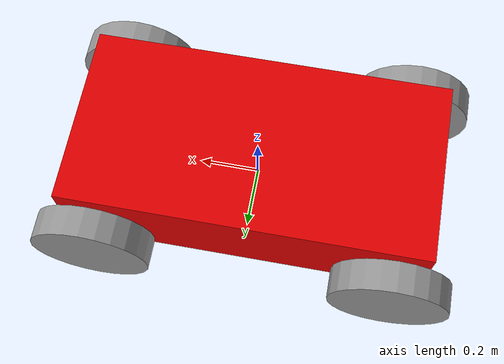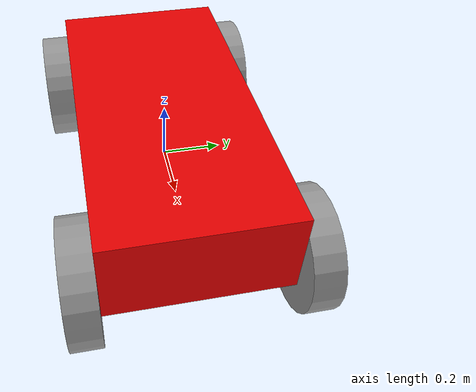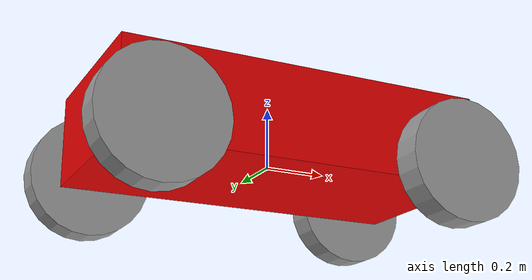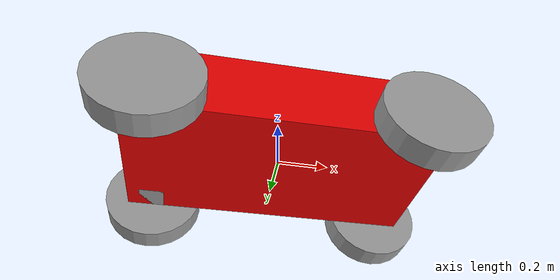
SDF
<?xml version='1.0'?>
<sdf version='1.6'>
  <model name='car'>
    <link name='link_0'>
      <pose frame=''>0 -2e-06 0.088889 0 -0 0</pose>
      <inertial>
        <mass>1</mass>
        <inertia>
          <ixx>0.166667</ixx>
          <ixy>0</ixy>
          <ixz>0</ixz>
          <iyy>0.166667</iyy>
          <iyz>0</iyz>
          <izz>0.166667</izz>
        </inertia>
        <pose frame=''>0 0 0 0 -0 0</pose>
      </inertial>
      <gravity>1</gravity>
      <self_collide>0</self_collide>
      <kinematic>0</kinematic>
      <visual name='visual'>
        <pose frame=''>0 0 0 0 -0 0</pose>
        <geometry>
          <box>
            <size>1.2 0.6 0.3</size>
          </box>
        </geometry>
        <material>
          <lighting>1</lighting>
          <script>
            <uri>file://media/materials/scripts/gazebo.material</uri>
            <name>Gazebo/Grey</name>
          </script>
          <shader type='pixel'>
            <normal_map>__default__</normal_map>
          </shader>
          <ambient>0.9 0.0 0.0 1</ambient>
          <diffuse>0.7 0.7 0.7 1</diffuse>
          <specular>0.01 0.01 0.01 1</specular>
          <emissive>0 0 0 1</emissive>
        </material>
        <transparency>0</transparency>
        <cast_shadows>1</cast_shadows>
      </visual>
      <collision name='collision'>
        <laser_retro>0</laser_retro>
        <max_contacts>10</max_contacts>
        <pose frame=''>0 0 0 0 -0 0</pose>
        <geometry>
          <box>
            <size>1.2 0.6 0.3</size>
          </box>
        </geometry>
        <surface>
          <friction>
            <ode>
              <mu>1</mu>
              <mu2>1</mu2>
              <fdir1>0 0 0</fdir1>
              <slip1>0</slip1>
              <slip2>0</slip2>
            </ode>
            <torsional>
              <coefficient>1</coefficient>
              <patch_radius>0</patch_radius>
              <surface_radius>0</surface_radius>
              <use_patch_radius>1</use_patch_radius>
              <ode>
                <slip>0</slip>
              </ode>
            </torsional>
          </friction>
          <bounce>
            <restitution_coefficient>0</restitution_coefficient>
            <threshold>1e+06</threshold>
          </bounce>
          <contact>
            <collide_without_contact>0</collide_without_contact>
            <collide_without_contact_bitmask>1</collide_without_contact_bitmask>
            <collide_bitmask>1</collide_bitmask>
            <ode>
              <soft_cfm>0</soft_cfm>
              <soft_erp>0.2</soft_erp>
              <kp>1e+13</kp>
              <kd>1</kd>
              <max_vel>0.01</max_vel>
              <min_depth>0</min_depth>
            </ode>
            <bullet>
              <split_impulse>1</split_impulse>
              <split_impulse_penetration_threshold>-0.01</split_impulse_penetration_threshold>
              <soft_cfm>0</soft_cfm>
              <soft_erp>0.2</soft_erp>
              <kp>1e+13</kp>
              <kd>1</kd>
            </bullet>
          </contact>
        </surface>
      </collision>
    </link>
    <link name='link_1'>
      <pose frame=''>-0.5 -0.250002 -0.011111 0 -0 0</pose>
      <inertial>
        <mass>1</mass>
        <inertia>
          <ixx>0.166667</ixx>
          <ixy>0</ixy>
          <ixz>0</ixz>
          <iyy>0.166667</iyy>
          <iyz>0</iyz>
          <izz>0.166667</izz>
        </inertia>
        <pose frame=''>0 0 0 0 -0 0</pose>
      </inertial>
      <gravity>1</gravity>
      <self_collide>0</self_collide>
      <kinematic>0</kinematic>
      <visual name='visual'>
        <pose frame=''>0 0 0 0 -0 0</pose>
        <geometry>
          <box>
            <size>0.1 0.1 0.1</size>
          </box>
        </geometry>
        <material>
          <lighting>1</lighting>
          <script>
            <uri>file://media/materials/scripts/gazebo.material</uri>
            <name>Gazebo/Grey</name>
          </script>
          <shader type='pixel'>
            <normal_map>__default__</normal_map>
          </shader>
          <ambient>0.9 0.9 0.9 1</ambient>
          <diffuse>0.7 0.7 0.7 1</diffuse>
          <specular>0.01 0.01 0.01 1</specular>
          <emissive>0 0 0 1</emissive>
        </material>
        <transparency>0</transparency>
        <cast_shadows>1</cast_shadows>
      </visual>
      <collision name='collision'>
        <laser_retro>0</laser_retro>
        <max_contacts>10</max_contacts>
        <pose frame=''>0 0 0 0 -0 0</pose>
        <geometry>
          <box>
            <size>0.1 0.1 0.1</size>
          </box>
        </geometry>
        <surface>
          <friction>
            <ode>
              <mu>1</mu>
              <mu2>1</mu2>
              <fdir1>0 0 0</fdir1>
              <slip1>0</slip1>
              <slip2>0</slip2>
            </ode>
            <torsional>
              <coefficient>1</coefficient>
              <patch_radius>0</patch_radius>
              <surface_radius>0</surface_radius>
              <use_patch_radius>1</use_patch_radius>
              <ode>
                <slip>0</slip>
              </ode>
            </torsional>
          </friction>
          <bounce>
            <restitution_coefficient>0</restitution_coefficient>
            <threshold>1e+06</threshold>
          </bounce>
          <contact>
            <collide_without_contact>0</collide_without_contact>
            <collide_without_contact_bitmask>1</collide_without_contact_bitmask>
            <collide_bitmask>1</collide_bitmask>
            <ode>
              <soft_cfm>0</soft_cfm>
              <soft_erp>0.2</soft_erp>
              <kp>1e+13</kp>
              <kd>1</kd>
              <max_vel>0.01</max_vel>
              <min_depth>0</min_depth>
            </ode>
            <bullet>
              <split_impulse>1</split_impulse>
              <split_impulse_penetration_threshold>-0.01</split_impulse_penetration_threshold>
              <soft_cfm>0</soft_cfm>
              <soft_erp>0.2</soft_erp>
              <kp>1e+13</kp>
              <kd>1</kd>
            </bullet>
          </contact>
        </surface>
      </collision>
    </link>
    <link name='link_1_clone'>
      <pose frame=''>-0.5 0.249998 -0.011111 0 -0 0</pose>
      <inertial>
        <mass>1</mass>
        <inertia>
          <ixx>0.166667</ixx>
          <ixy>0</ixy>
          <ixz>0</ixz>
          <iyy>0.166667</iyy>
          <iyz>0</iyz>
          <izz>0.166667</izz>
        </inertia>
        <pose frame=''>0 0 0 0 -0 0</pose>
      </inertial>
      <self_collide>0</self_collide>
      <kinematic>0</kinematic>
      <visual name='visual'>
        <pose frame=''>0 0 0 0 -0 0</pose>
        <geometry>
          <box>
            <size>0.1 0.1 0.1</size>
          </box>
        </geometry>
        <material>
          <lighting>1</lighting>
          <script>
            <uri>file://media/materials/scripts/gazebo.material</uri>
            <name>Gazebo/Grey</name>
          </script>
          <shader type='pixel'>
            <normal_map>__default__</normal_map>
          </shader>
          <ambient>0.9 0.9 0.9 1</ambient>
          <diffuse>0.7 0.7 0.7 1</diffuse>
          <specular>0.01 0.01 0.01 1</specular>
          <emissive>0 0 0 1</emissive>
        </material>
        <transparency>0</transparency>
        <cast_shadows>1</cast_shadows>
      </visual>
      <collision name='collision'>
        <laser_retro>0</laser_retro>
        <max_contacts>10</max_contacts>
        <pose frame=''>0 0 0 0 -0 0</pose>
        <geometry>
          <box>
            <size>0.1 0.1 0.1</size>
          </box>
        </geometry>
        <surface>
          <friction>
            <ode>
              <mu>1</mu>
              <mu2>1</mu2>
              <fdir1>0 0 0</fdir1>
              <slip1>0</slip1>
              <slip2>0</slip2>
            </ode>
            <torsional>
              <coefficient>1</coefficient>
              <patch_radius>0</patch_radius>
              <surface_radius>0</surface_radius>
              <use_patch_radius>1</use_patch_radius>
              <ode>
                <slip>0</slip>
              </ode>
            </torsional>
          </friction>
          <bounce>
            <restitution_coefficient>0</restitution_coefficient>
            <threshold>1e+06</threshold>
          </bounce>
          <contact>
            <collide_without_contact>0</collide_without_contact>
            <collide_without_contact_bitmask>1</collide_without_contact_bitmask>
            <collide_bitmask>1</collide_bitmask>
            <ode>
              <soft_cfm>0</soft_cfm>
              <soft_erp>0.2</soft_erp>
              <kp>1e+13</kp>
              <kd>1</kd>
              <max_vel>0.01</max_vel>
              <min_depth>0</min_depth>
            </ode>
            <bullet>
              <split_impulse>1</split_impulse>
              <split_impulse_penetration_threshold>-0.01</split_impulse_penetration_threshold>
              <soft_cfm>0</soft_cfm>
              <soft_erp>0.2</soft_erp>
              <kp>1e+13</kp>
              <kd>1</kd>
            </bullet>
          </contact>
        </surface>
      </collision>
    </link>
    <link name='link_1_clone_0'>
      <pose frame=''>0.5 -0.250002 -0.011111 0 -0 0</pose>
      <inertial>
        <mass>1</mass>
        <inertia>
          <ixx>0.166667</ixx>
          <ixy>0</ixy>
          <ixz>0</ixz>
          <iyy>0.166667</iyy>
          <iyz>0</iyz>
          <izz>0.166667</izz>
        </inertia>
        <pose frame=''>0 0 0 0 -0 0</pose>
      </inertial>
      <self_collide>0</self_collide>
      <kinematic>0</kinematic>
      <visual name='visual'>
        <pose frame=''>0 0 0 0 -0 0</pose>
        <geometry>
          <box>
            <size>0.1 0.1 0.1</size>
          </box>
        </geometry>
        <material>
          <lighting>1</lighting>
          <script>
            <uri>file://media/materials/scripts/gazebo.material</uri>
            <name>Gazebo/Grey</name>
          </script>
          <shader type='pixel'>
            <normal_map>__default__</normal_map>
          </shader>
          <ambient>0.3 0.3 0.3 1</ambient>
          <diffuse>0.7 0.7 0.7 1</diffuse>
          <specular>0.01 0.01 0.01 1</specular>
          <emissive>0 0 0 1</emissive>
        </material>
        <transparency>0</transparency>
        <cast_shadows>1</cast_shadows>
      </visual>
      <collision name='collision'>
        <laser_retro>0</laser_retro>
        <max_contacts>10</max_contacts>
        <pose frame=''>0 0 0 0 -0 0</pose>
        <geometry>
          <box>
            <size>0.1 0.1 0.1</size>
          </box>
        </geometry>
        <surface>
          <friction>
            <ode>
              <mu>1</mu>
              <mu2>1</mu2>
              <fdir1>0 0 0</fdir1>
              <slip1>0</slip1>
              <slip2>0</slip2>
            </ode>
            <torsional>
              <coefficient>1</coefficient>
              <patch_radius>0</patch_radius>
              <surface_radius>0</surface_radius>
              <use_patch_radius>1</use_patch_radius>
              <ode>
                <slip>0</slip>
              </ode>
            </torsional>
          </friction>
          <bounce>
            <restitution_coefficient>0</restitution_coefficient>
            <threshold>1e+06</threshold>
          </bounce>
          <contact>
            <collide_without_contact>0</collide_without_contact>
            <collide_without_contact_bitmask>1</collide_without_contact_bitmask>
            <collide_bitmask>1</collide_bitmask>
            <ode>
              <soft_cfm>0</soft_cfm>
              <soft_erp>0.2</soft_erp>
              <kp>1e+13</kp>
              <kd>1</kd>
              <max_vel>0.01</max_vel>
              <min_depth>0</min_depth>
            </ode>
            <bullet>
              <split_impulse>1</split_impulse>
              <split_impulse_penetration_threshold>-0.01</split_impulse_penetration_threshold>
              <soft_cfm>0</soft_cfm>
              <soft_erp>0.2</soft_erp>
              <kp>1e+13</kp>
              <kd>1</kd>
            </bullet>
          </contact>
        </surface>
      </collision>
    </link>
    <link name='link_1_clone_1'>
      <pose frame=''>0.5 0.249998 -0.011111 0 -0 0</pose>
      <inertial>
        <mass>1</mass>
        <inertia>
          <ixx>0.166667</ixx>
          <ixy>0</ixy>
          <ixz>0</ixz>
          <iyy>0.166667</iyy>
          <iyz>0</iyz>
          <izz>0.166667</izz>
        </inertia>
        <pose frame=''>0 0 0 0 -0 0</pose>
      </inertial>
      <self_collide>0</self_collide>
      <kinematic>0</kinematic>
      <visual name='visual'>
        <pose frame=''>0 0 0 0 -0 0</pose>
        <geometry>
          <box>
            <size>0.1 0.1 0.1</size>
          </box>
        </geometry>
        <material>
          <lighting>1</lighting>
          <script>
            <uri>file://media/materials/scripts/gazebo.material</uri>
            <name>Gazebo/Grey</name>
          </script>
          <shader type='pixel'>
            <normal_map>__default__</normal_map>
          </shader>
          <ambient>0.9 0.9 0.9 1</ambient>
          <diffuse>0.7 0.7 0.7 1</diffuse>
          <specular>0.01 0.01 0.01 1</specular>
          <emissive>0 0 0 1</emissive>
        </material>
        <transparency>0</transparency>
        <cast_shadows>1</cast_shadows>
      </visual>
      <collision name='collision'>
        <laser_retro>0</laser_retro>
        <max_contacts>10</max_contacts>
        <pose frame=''>0 0 0 0 -0 0</pose>
        <geometry>
          <box>
            <size>0.1 0.1 0.1</size>
          </box>
        </geometry>
        <surface>
          <friction>
            <ode>
              <mu>1</mu>
              <mu2>1</mu2>
              <fdir1>0 0 0</fdir1>
              <slip1>0</slip1>
              <slip2>0</slip2>
            </ode>
            <torsional>
              <coefficient>1</coefficient>
              <patch_radius>0</patch_radius>
              <surface_radius>0</surface_radius>
              <use_patch_radius>1</use_patch_radius>
              <ode>
                <slip>0</slip>
              </ode>
            </torsional>
          </friction>
          <bounce>
            <restitution_coefficient>0</restitution_coefficient>
            <threshold>1e+06</threshold>
          </bounce>
          <contact>
            <collide_without_contact>0</collide_without_contact>
            <collide_without_contact_bitmask>1</collide_without_contact_bitmask>
            <collide_bitmask>1</collide_bitmask>
            <ode>
              <soft_cfm>0</soft_cfm>
              <soft_erp>0.2</soft_erp>
              <kp>1e+13</kp>
              <kd>1</kd>
              <max_vel>0.01</max_vel>
              <min_depth>0</min_depth>
            </ode>
            <bullet>
              <split_impulse>1</split_impulse>
              <split_impulse_penetration_threshold>-0.01</split_impulse_penetration_threshold>
              <soft_cfm>0</soft_cfm>
              <soft_erp>0.2</soft_erp>
              <kp>1e+13</kp>
              <kd>1</kd>
            </bullet>
          </contact>
        </surface>
      </collision>
    </link>
    <link name='link_2'>
      <pose frame=''>-0.5 -0.350002 -0.011111 0 -0 0</pose>
      <inertial>
        <mass>1</mass>
        <inertia>
          <ixx>0.145833</ixx>
          <ixy>0</ixy>
          <ixz>0</ixz>
          <iyy>0.145833</iyy>
          <iyz>0</iyz>
          <izz>0.125</izz>
        </inertia>
        <pose frame=''>0 0 0 0 -0 0</pose>
      </inertial>
      <gravity>1</gravity>
      <self_collide>0</self_collide>
      <kinematic>0</kinematic>
      <visual name='visual'>
        <pose frame=''>0 0 0 1.5707 -0 0</pose>
        <geometry>
          <cylinder>
            <radius>0.2</radius>
            <length>0.1</length>
          </cylinder>
        </geometry>
        <material>
          <lighting>1</lighting>
          <script>
            <uri>file://media/materials/scripts/gazebo.material</uri>
            <name>Gazebo/Grey</name>
          </script>
          <shader type='pixel'>
            <normal_map>__default__</normal_map>
          </shader>
          <ambient>0.9 0.9 0.9 1</ambient>
          <diffuse>0.7 0.7 0.7 1</diffuse>
          <specular>0.01 0.01 0.01 1</specular>
          <emissive>0 0 0 1</emissive>
        </material>
        <transparency>0</transparency>
        <cast_shadows>1</cast_shadows>
      </visual>
      <collision name='collision'>
        <laser_retro>0</laser_retro>
        <max_contacts>10</max_contacts>
        <pose frame=''>0 0 0 1.5707 -0 0</pose>
        <geometry>
          <cylinder>
            <radius>0.2</radius>
            <length>0.1</length>
          </cylinder>
        </geometry>
        <surface>
          <friction>
            <ode>
              <mu>1</mu>
              <mu2>1</mu2>
              <fdir1>0 0 0</fdir1>
              <slip1>0</slip1>
              <slip2>0</slip2>
            </ode>
            <torsional>
              <coefficient>1</coefficient>
              <patch_radius>0</patch_radius>
              <surface_radius>0</surface_radius>
              <use_patch_radius>1</use_patch_radius>
              <ode>
                <slip>0</slip>
              </ode>
            </torsional>
          </friction>
          <bounce>
            <restitution_coefficient>0</restitution_coefficient>
            <threshold>1e+06</threshold>
          </bounce>
          <contact>
            <collide_without_contact>0</collide_without_contact>
            <collide_without_contact_bitmask>1</collide_without_contact_bitmask>
            <collide_bitmask>1</collide_bitmask>
            <ode>
              <soft_cfm>0</soft_cfm>
              <soft_erp>0.2</soft_erp>
              <kp>1e+13</kp>
              <kd>1</kd>
              <max_vel>0.01</max_vel>
              <min_depth>0</min_depth>
            </ode>
            <bullet>
              <split_impulse>1</split_impulse>
              <split_impulse_penetration_threshold>-0.01</split_impulse_penetration_threshold>
              <soft_cfm>0</soft_cfm>
              <soft_erp>0.2</soft_erp>
              <kp>1e+13</kp>
              <kd>1</kd>
            </bullet>
          </contact>
        </surface>
      </collision>
    </link>
    <link name='link_2_clone'>
      <pose frame=''>-0.5 0.349998 -0.011111 0 -0 0</pose>
      <inertial>
        <mass>1</mass>
        <inertia>
          <ixx>0.145833</ixx>
          <ixy>0</ixy>
          <ixz>0</ixz>
          <iyy>0.145833</iyy>
          <iyz>0</iyz>
          <izz>0.125</izz>
        </inertia>
        <pose frame=''>0 0 0 0 -0 0</pose>
      </inertial>
      <self_collide>0</self_collide>
      <kinematic>0</kinematic>
      <visual name='visual'>
        <pose frame=''>0 0 0 1.5707 -0 0</pose>
        <geometry>
          <cylinder>
            <radius>0.2</radius>
            <length>0.1</length>
          </cylinder>
        </geometry>
        <material>
          <lighting>1</lighting>
          <script>
            <uri>file://media/materials/scripts/gazebo.material</uri>
            <name>Gazebo/Grey</name>
          </script>
          <shader type='pixel'>
            <normal_map>__default__</normal_map>
          </shader>
          <ambient>0.9 0.9 0.9 1</ambient>
          <diffuse>0.7 0.7 0.7 1</diffuse>
          <specular>0.01 0.01 0.01 1</specular>
          <emissive>0 0 0 1</emissive>
        </material>
        <transparency>0</transparency>
        <cast_shadows>1</cast_shadows>
      </visual>
      <collision name='collision'>
        <laser_retro>0</laser_retro>
        <max_contacts>10</max_contacts>
        <pose frame=''>0 0 0 1.5707 -0 0</pose>
        <geometry>
          <cylinder>
            <radius>0.2</radius>
            <length>0.1</length>
          </cylinder>
        </geometry>
        <surface>
          <friction>
            <ode>
              <mu>1</mu>
              <mu2>1</mu2>
              <fdir1>0 0 0</fdir1>
              <slip1>0</slip1>
              <slip2>0</slip2>
            </ode>
            <torsional>
              <coefficient>1</coefficient>
              <patch_radius>0</patch_radius>
              <surface_radius>0</surface_radius>
              <use_patch_radius>1</use_patch_radius>
              <ode>
                <slip>0</slip>
              </ode>
            </torsional>
          </friction>
          <bounce>
            <restitution_coefficient>0</restitution_coefficient>
            <threshold>1e+06</threshold>
          </bounce>
          <contact>
            <collide_without_contact>0</collide_without_contact>
            <collide_without_contact_bitmask>1</collide_without_contact_bitmask>
            <collide_bitmask>1</collide_bitmask>
            <ode>
              <soft_cfm>0</soft_cfm>
              <soft_erp>0.2</soft_erp>
              <kp>1e+13</kp>
              <kd>1</kd>
              <max_vel>0.01</max_vel>
              <min_depth>0</min_depth>
            </ode>
            <bullet>
              <split_impulse>1</split_impulse>
              <split_impulse_penetration_threshold>-0.01</split_impulse_penetration_threshold>
              <soft_cfm>0</soft_cfm>
              <soft_erp>0.2</soft_erp>
              <kp>1e+13</kp>
              <kd>1</kd>
            </bullet>
          </contact>
        </surface>
      </collision>
    </link>
    <link name='link_2_clone_0'>
      <pose frame=''>0.5 -0.350021 -0.011111 0 -0 0</pose>
      <inertial>
        <mass>1</mass>
        <inertia>
          <ixx>0.145833</ixx>
          <ixy>0</ixy>
          <ixz>0</ixz>
          <iyy>0.145833</iyy>
          <iyz>0</iyz>
          <izz>0.125</izz>
        </inertia>
        <pose frame=''>0 0 0 0 -0 0</pose>
      </inertial>
      <self_collide>0</self_collide>
      <kinematic>0</kinematic>
      <visual name='visual'>
        <pose frame=''>0 0 0 1.5707 -0 0</pose>
        <geometry>
          <cylinder>
            <radius>0.2</radius>
            <length>0.1</length>
          </cylinder>
        </geometry>
        <material>
          <lighting>1</lighting>
          <script>
            <uri>file://media/materials/scripts/gazebo.material</uri>
            <name>Gazebo/Grey</name>
          </script>
          <shader type='pixel'>
            <normal_map>__default__</normal_map>
          </shader>
          <ambient>0.9 0.9 0.9 1</ambient>
          <diffuse>0.7 0.7 0.7 1</diffuse>
          <specular>0.01 0.01 0.01 1</specular>
          <emissive>0 0 0 1</emissive>
        </material>
        <transparency>0</transparency>
        <cast_shadows>1</cast_shadows>
      </visual>
      <collision name='collision'>
        <laser_retro>0</laser_retro>
        <max_contacts>10</max_contacts>
        <pose frame=''>0 0 0 1.5707 -0 0</pose>
        <geometry>
          <cylinder>
            <radius>0.2</radius>
            <length>0.1</length>
          </cylinder>
        </geometry>
        <surface>
          <friction>
            <ode>
              <mu>1</mu>
              <mu2>1</mu2>
              <fdir1>0 0 0</fdir1>
              <slip1>0</slip1>
              <slip2>0</slip2>
            </ode>
            <torsional>
              <coefficient>1</coefficient>
              <patch_radius>0</patch_radius>
              <surface_radius>0</surface_radius>
              <use_patch_radius>1</use_patch_radius>
              <ode>
                <slip>0</slip>
              </ode>
            </torsional>
          </friction>
          <bounce>
            <restitution_coefficient>0</restitution_coefficient>
            <threshold>1e+06</threshold>
          </bounce>
          <contact>
            <collide_without_contact>0</collide_without_contact>
            <collide_without_contact_bitmask>1</collide_without_contact_bitmask>
            <collide_bitmask>1</collide_bitmask>
            <ode>
              <soft_cfm>0</soft_cfm>
              <soft_erp>0.2</soft_erp>
              <kp>1e+13</kp>
              <kd>1</kd>
              <max_vel>0.01</max_vel>
              <min_depth>0</min_depth>
            </ode>
            <bullet>
              <split_impulse>1</split_impulse>
              <split_impulse_penetration_threshold>-0.01</split_impulse_penetration_threshold>
              <soft_cfm>0</soft_cfm>
              <soft_erp>0.2</soft_erp>
              <kp>1e+13</kp>
              <kd>1</kd>
            </bullet>
          </contact>
        </surface>
      </collision>
    </link>
    <link name='link_2_clone_1'>
      <pose frame=''>0.5 0.350017 -0.011111 0 -0 0</pose>
      <inertial>
        <mass>1</mass>
        <inertia>
          <ixx>0.145833</ixx>
          <ixy>0</ixy>
          <ixz>0</ixz>
          <iyy>0.145833</iyy>
          <iyz>0</iyz>
          <izz>0.125</izz>
        </inertia>
        <pose frame=''>0 0 0 0 -0 0</pose>
      </inertial>
      <self_collide>0</self_collide>
      <kinematic>0</kinematic>
      <visual name='visual'>
        <pose frame=''>0 0 0 1.5707 -0 0</pose>
        <geometry>
          <cylinder>
            <radius>0.2</radius>
            <length>0.1</length>
          </cylinder>
        </geometry>
        <material>
          <lighting>1</lighting>
          <script>
            <uri>file://media/materials/scripts/gazebo.material</uri>
            <name>Gazebo/Grey</name>
          </script>
          <shader type='pixel'>
            <normal_map>__default__</normal_map>
          </shader>
         <ambient>0.9 0.9 0.9 1</ambient>
          <diffuse>0.7 0.7 0.7 1</diffuse>
          <specular>0.01 0.01 0.01 1</specular>
          <emissive>0 0 0 1</emissive>
        </material>
        <transparency>0</transparency>
        <cast_shadows>1</cast_shadows>
      </visual>
      <collision name='collision'>
        <laser_retro>0</laser_retro>
        <max_contacts>10</max_contacts>
        <pose frame=''>0 0 0 1.5707 -0 0</pose>
        <geometry>
          <cylinder>
            <radius>0.2</radius>
            <length>0.1</length>
          </cylinder>
        </geometry>
        <surface>
          <friction>
            <ode>
              <mu>1</mu>
              <mu2>1</mu2>
              <fdir1>0 0 0</fdir1>
              <slip1>0</slip1>
              <slip2>0</slip2>
            </ode>
            <torsional>
              <coefficient>1</coefficient>
              <patch_radius>0</patch_radius>
              <surface_radius>0</surface_radius>
              <use_patch_radius>1</use_patch_radius>
              <ode>
                <slip>0</slip>
              </ode>
            </torsional>
          </friction>
          <bounce>
            <restitution_coefficient>0</restitution_coefficient>
            <threshold>1e+06</threshold>
          </bounce>
          <contact>
            <collide_without_contact>0</collide_without_contact>
            <collide_without_contact_bitmask>1</collide_without_contact_bitmask>
            <collide_bitmask>1</collide_bitmask>
            <ode>
              <soft_cfm>0</soft_cfm>
              <soft_erp>0.2</soft_erp>
              <kp>1e+13</kp>
              <kd>1</kd>
              <max_vel>0.01</max_vel>
              <min_depth>0</min_depth>
            </ode>
            <bullet>
              <split_impulse>1</split_impulse>
              <split_impulse_penetration_threshold>-0.01</split_impulse_penetration_threshold>
              <soft_cfm>0</soft_cfm>
              <soft_erp>0.2</soft_erp>
              <kp>1e+13</kp>
              <kd>1</kd>
            </bullet>
          </contact>
        </surface>
      </collision>
    </link>
    <joint name='link_0_JOINT_0' type='fixed'>
      <parent>link_0</parent>
      <child>link_1</child>
      <pose frame=''>0 0 0 0 -0 0</pose>
      <physics>
        <ode>
          <limit>
            <cfm>0</cfm>
            <erp>0.2</erp>
          </limit>
          <suspension>
            <cfm>0</cfm>
            <erp>0.2</erp>
          </suspension>
        </ode>
      </physics>
    </joint>
    <joint name='link_0_JOINT_1' type='fixed'>
      <parent>link_0</parent>
      <child>link_1_clone</child>
      <pose frame=''>0 0 0 0 -0 0</pose>
      <physics>
        <ode>
          <limit>
            <cfm>0</cfm>
            <erp>0.2</erp>
          </limit>
          <suspension>
            <cfm>0</cfm>
            <erp>0.2</erp>
          </suspension>
        </ode>
      </physics>
    </joint>
    <joint name='link_0_JOINT_2' type='fixed'>
      <parent>link_0</parent>
      <child>link_1_clone_0</child>
      <pose frame=''>0 0 0 0 -0 0</pose>
      <physics>
        <ode>
          <limit>
            <cfm>0</cfm>
            <erp>0.2</erp>
          </limit>
          <suspension>
            <cfm>0</cfm>
            <erp>0.2</erp>
          </suspension>
        </ode>
      </physics>
    </joint>
    <joint name='link_0_JOINT_3' type='fixed'>
      <parent>link_0</parent>
      <child>link_1_clone_1</child>
      <pose frame=''>0 0 0 0 -0 0</pose>
      <physics>
        <ode>
          <limit>
            <cfm>0</cfm>
            <erp>0.2</erp>
          </limit>
          <suspension>
            <cfm>0</cfm>
            <erp>0.2</erp>
          </suspension>
        </ode>
      </physics>
    </joint>
    <joint name='link_1_JOINT_4' type='revolute'>
      <parent>link_1</parent>
      <child>link_2</child>
      <pose frame=''>0 0 0 0 -0 0</pose>
      <axis>
        <xyz>0 1 0</xyz>
        <use_parent_model_frame>0</use_parent_model_frame>
        <limit>
          <lower>-1.79769e+308</lower>
          <upper>1.79769e+308</upper>
          <effort>-1</effort>
          <velocity>-1</velocity>
        </limit>
        <dynamics>
          <spring_reference>0</spring_reference>
          <spring_stiffness>0</spring_stiffness>
          <damping>0</damping>
          <friction>0</friction>
        </dynamics>
      </axis>
      <physics>
        <ode>
          <limit>
            <cfm>0</cfm>
            <erp>0.2</erp>
          </limit>
          <suspension>
            <cfm>0</cfm>
            <erp>0.2</erp>
          </suspension>
        </ode>
      </physics>
    </joint>
    <joint name='link_1_clone_0_JOINT_7' type='revolute'>
      <parent>link_1_clone_0</parent>
      <child>link_2_clone_0</child>
      <pose frame=''>0 0 0 0 -0 0</pose>
      <axis>
        <xyz>0 1 0</xyz>
        <use_parent_model_frame>0</use_parent_model_frame>
        <limit>
          <lower>-1.79769e+308</lower>
          <upper>1.79769e+308</upper>
          <effort>-1</effort>
          <velocity>-1</velocity>
        </limit>
        <dynamics>
          <spring_reference>0</spring_reference>
          <spring_stiffness>0</spring_stiffness>
          <damping>0</damping>
        </dynamics>
      </axis>
      <physics>
        <ode>
          <limit>
            <cfm>0</cfm>
            <erp>0.2</erp>
          </limit>
          <suspension>
            <cfm>0</cfm>
            <erp>0.2</erp>
          </suspension>
        </ode>
      </physics>
    </joint>
    <joint name='link_1_clone_1_JOINT_8' type='revolute'>
      <parent>link_1_clone_1</parent>
      <child>link_2_clone_1</child>
      <pose frame=''>0 0 0 0 0.03 0.02</pose>
      <axis>
        <xyz>0 1 0</xyz>
        <use_parent_model_frame>0</use_parent_model_frame>
        <limit>
          <lower>-1.79769e+308</lower>
          <upper>1.79769e+308</upper>
          <effort>-1</effort>
          <velocity>-1</velocity>
        </limit>
        <dynamics>
          <spring_reference>0</spring_reference>
          <spring_stiffness>0</spring_stiffness>
          <damping>0</damping>
          <friction>0</friction>
        </dynamics>
      </axis>
      <physics>
        <ode>
          <limit>
            <cfm>0</cfm>
            <erp>0.2</erp>
          </limit>
          <suspension>
            <cfm>0</cfm>
            <erp>0.2</erp>
          </suspension>
        </ode>
      </physics>
    </joint>
    <joint name='link_1_clone_JOINT_6' type='revolute'>
      <parent>link_1_clone</parent>
      <child>link_2_clone</child>
      <pose frame=''>0 0 0 0 -0 0</pose>
      <axis>
        <xyz>0 1 0</xyz>
        <use_parent_model_frame>0</use_parent_model_frame>
        <limit>
          <lower>-1.79769e+308</lower>
          <upper>1.79769e+308</upper>
          <effort>-1</effort>
          <velocity>-1</velocity>
        </limit>
        <dynamics>
          <spring_reference>0</spring_reference>
          <spring_stiffness>0</spring_stiffness>
          <damping>0</damping>
        </dynamics>
      </axis>
      <physics>
        <ode>
          <limit>
            <cfm>0</cfm>
            <erp>0.2</erp>
          </limit>
          <suspension>
            <cfm>0</cfm>
            <erp>0.2</erp>
          </suspension>
        </ode>
      </physics>
    </joint>
    <static>0</static>
    <allow_auto_disable>1</allow_auto_disable>
  </model>
</sdf>
